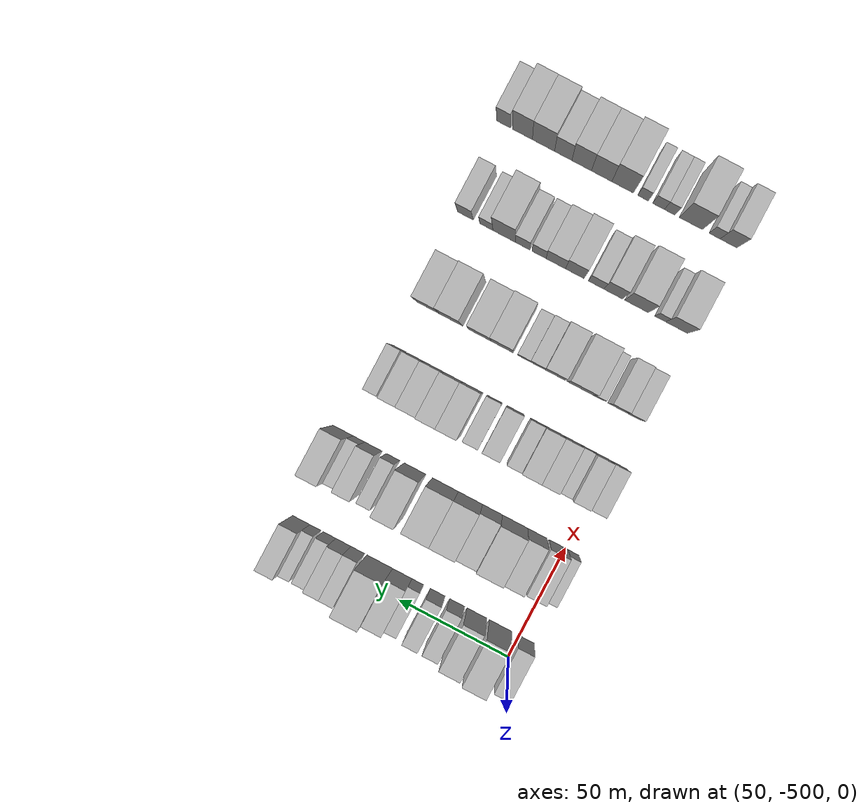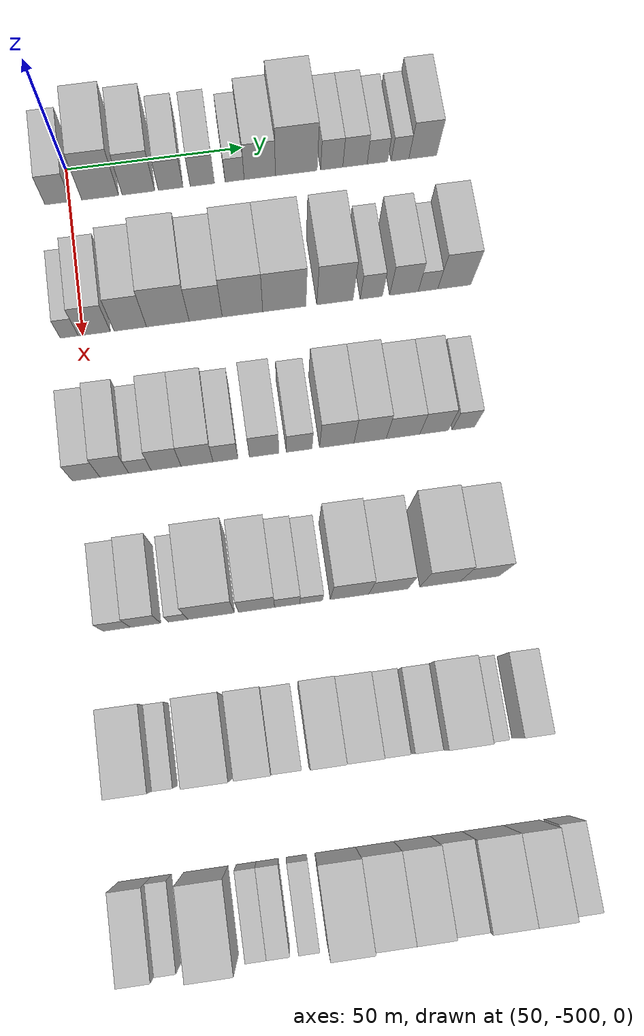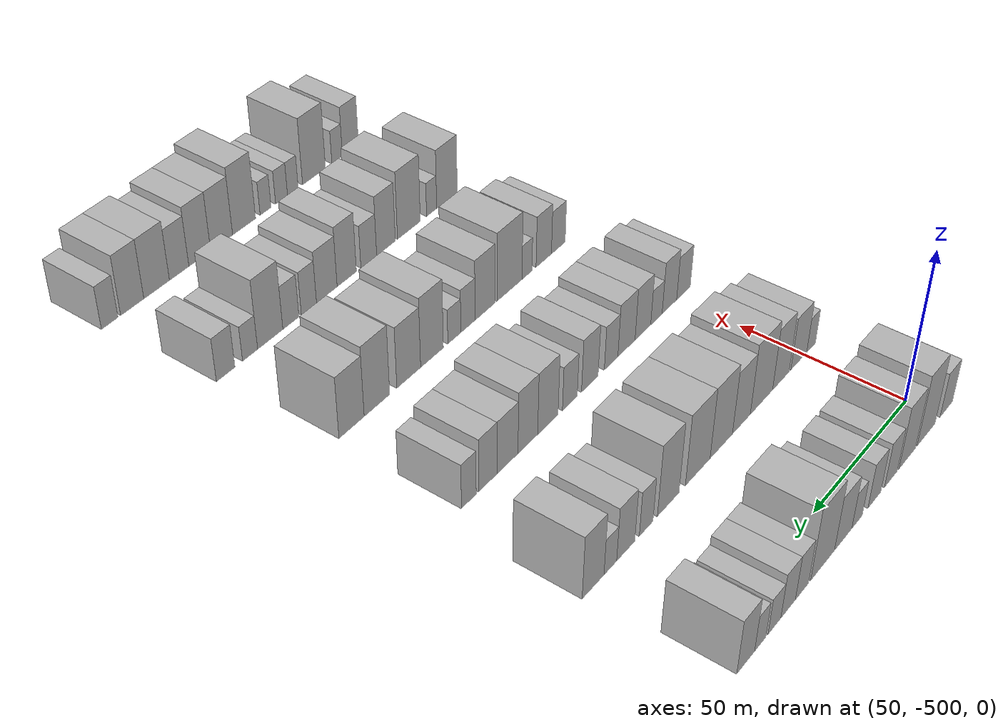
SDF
<sdf version="1.6">
 <world name="default">
  <model name="building_14">
   <static>1</static>
   <pose>50.0000 -503.1471 0 0.000000 0.000000 0.000000</pose>
   <link name="link">
    <pose>0 0 7.50 0 0 0</pose>
    <collision name="collision"><geometry><box><size>20.0000 7.3003 15.0000</size></box></geometry></collision>
    <visual name="visual">
     <cast_shadows>0</cast_shadows>
     <geometry><box><size>20.0000 7.3003 15.0000</size></box></geometry>
     <material>
      <script>
       <uri>model://HANNAS_wall/materials/scripts</uri>
       <uri>model://HANNAS_wall/materials/textures</uri>
       <name>vrc/HANNAS_wall</name>
      </script>
     </material>
    </visual>
   </link>
  </model>
  <model name="building_15">
   <static>1</static>
   <pose>50.0000 -491.3386 0 0.000000 0.000000 0.000000</pose>
   <link name="link">
    <pose>0 0 12.00 0 0 0</pose>
    <collision name="collision"><geometry><box><size>20.0000 10.3166 24.0000</size></box></geometry></collision>
    <visual name="visual">
     <cast_shadows>0</cast_shadows>
     <geometry><box><size>20.0000 10.3166 24.0000</size></box></geometry>
     <material>
      <script>
       <uri>model://HANNAS_wall/materials/scripts</uri>
       <uri>model://HANNAS_wall/materials/textures</uri>
       <name>vrc/HANNAS_wall</name>
      </script>
     </material>
    </visual>
   </link>
  </model>
  <model name="building_16">
   <static>1</static>
   <pose>50.0000 -480.6012 0 0.000000 0.000000 0.000000</pose>
   <link name="link">
    <pose>0 0 10.50 0 0 0</pose>
    <collision name="collision"><geometry><box><size>20.0000 9.1582 21.0000</size></box></geometry></collision>
    <visual name="visual">
     <cast_shadows>0</cast_shadows>
     <geometry><box><size>20.0000 9.1582 21.0000</size></box></geometry>
     <material>
      <script>
       <uri>model://HANNAS_wall/materials/scripts</uri>
       <uri>model://HANNAS_wall/materials/textures</uri>
       <name>vrc/HANNAS_wall</name>
      </script>
     </material>
    </visual>
   </link>
  </model>
  <model name="building_17">
   <static>1</static>
   <pose>50.0000 -471.5385 0 0.000000 0.000000 0.000000</pose>
   <link name="link">
    <pose>0 0 7.50 0 0 0</pose>
    <collision name="collision"><geometry><box><size>20.0000 6.9674 15.0000</size></box></geometry></collision>
    <visual name="visual">
     <cast_shadows>0</cast_shadows>
     <geometry><box><size>20.0000 6.9674 15.0000</size></box></geometry>
     <material>
      <script>
       <uri>model://HANNAS_wall/materials/scripts</uri>
       <uri>model://HANNAS_wall/materials/textures</uri>
       <name>vrc/HANNAS_wall</name>
      </script>
     </material>
    </visual>
   </link>
  </model>
  <model name="building_18">
   <static>1</static>
   <pose>50.0000 -462.6272 0 0.000000 0.000000 0.000000</pose>
   <link name="link">
    <pose>0 0 7.50 0 0 0</pose>
    <collision name="collision"><geometry><box><size>20.0000 6.8551 15.0000</size></box></geometry></collision>
    <visual name="visual">
     <cast_shadows>0</cast_shadows>
     <geometry><box><size>20.0000 6.8551 15.0000</size></box></geometry>
     <material>
      <script>
       <uri>model://HANNAS_wall/materials/scripts</uri>
       <uri>model://HANNAS_wall/materials/textures</uri>
       <name>vrc/HANNAS_wall</name>
      </script>
     </material>
    </visual>
   </link>
  </model>
  <model name="building_19">
   <static>1</static>
   <pose>50.0000 -453.5143 0 0.000000 0.000000 0.000000</pose>
   <link name="link">
    <pose>0 0 6.00 0 0 0</pose>
    <collision name="collision"><geometry><box><size>20.0000 5.3707 12.0000</size></box></geometry></collision>
    <visual name="visual">
     <cast_shadows>0</cast_shadows>
     <geometry><box><size>20.0000 5.3707 12.0000</size></box></geometry>
     <material>
      <script>
       <uri>model://HANNAS_wall/materials/scripts</uri>
       <uri>model://HANNAS_wall/materials/textures</uri>
       <name>vrc/HANNAS_wall</name>
      </script>
     </material>
    </visual>
   </link>
  </model>
  <model name="building_20">
   <static>1</static>
   <pose>50.0000 -446.4082 0 0.000000 0.000000 0.000000</pose>
   <link name="link">
    <pose>0 0 9.00 0 0 0</pose>
    <collision name="collision"><geometry><box><size>20.0000 8.8415 18.0000</size></box></geometry></collision>
    <visual name="visual">
     <cast_shadows>0</cast_shadows>
     <geometry><box><size>20.0000 8.8415 18.0000</size></box></geometry>
     <material>
      <script>
       <uri>model://HANNAS_wall/materials/scripts</uri>
       <uri>model://HANNAS_wall/materials/textures</uri>
       <name>vrc/HANNAS_wall</name>
      </script>
     </material>
    </visual>
   </link>
  </model>
  <model name="building_21">
   <static>1</static>
   <pose>50.0000 -436.0804 0 0.000000 0.000000 0.000000</pose>
   <link name="link">
    <pose>0 0 12.00 0 0 0</pose>
    <collision name="collision"><geometry><box><size>20.0000 11.8140 24.0000</size></box></geometry></collision>
    <visual name="visual">
     <cast_shadows>0</cast_shadows>
     <geometry><box><size>20.0000 11.8140 24.0000</size></box></geometry>
     <material>
      <script>
       <uri>model://HANNAS_wall/materials/scripts</uri>
       <uri>model://HANNAS_wall/materials/textures</uri>
       <name>vrc/HANNAS_wall</name>
      </script>
     </material>
    </visual>
   </link>
  </model>
  <model name="building_22">
   <static>1</static>
   <pose>50.0000 -426.0218 0 0.000000 0.000000 0.000000</pose>
   <link name="link">
    <pose>0 0 7.50 0 0 0</pose>
    <collision name="collision"><geometry><box><size>20.0000 6.3033 15.0000</size></box></geometry></collision>
    <visual name="visual">
     <cast_shadows>0</cast_shadows>
     <geometry><box><size>20.0000 6.3033 15.0000</size></box></geometry>
     <material>
      <script>
       <uri>model://HANNAS_wall/materials/scripts</uri>
       <uri>model://HANNAS_wall/materials/textures</uri>
       <name>vrc/HANNAS_wall</name>
      </script>
     </material>
    </visual>
   </link>
  </model>
  <model name="building_23">
   <static>1</static>
   <pose>50.0000 -419.4182 0 0.000000 0.000000 0.000000</pose>
   <link name="link">
    <pose>0 0 7.50 0 0 0</pose>
    <collision name="collision"><geometry><box><size>20.0000 6.9038 15.0000</size></box></geometry></collision>
    <visual name="visual">
     <cast_shadows>0</cast_shadows>
     <geometry><box><size>20.0000 6.9038 15.0000</size></box></geometry>
     <material>
      <script>
       <uri>model://HANNAS_wall/materials/scripts</uri>
       <uri>model://HANNAS_wall/materials/textures</uri>
       <name>vrc/HANNAS_wall</name>
      </script>
     </material>
    </visual>
   </link>
  </model>
  <model name="building_24">
   <static>1</static>
   <pose>50.0000 -413.0343 0 0.000000 0.000000 0.000000</pose>
   <link name="link">
    <pose>0 0 6.00 0 0 0</pose>
    <collision name="collision"><geometry><box><size>20.0000 5.8640 12.0000</size></box></geometry></collision>
    <visual name="visual">
     <cast_shadows>0</cast_shadows>
     <geometry><box><size>20.0000 5.8640 12.0000</size></box></geometry>
     <material>
      <script>
       <uri>model://HANNAS_wall/materials/scripts</uri>
       <uri>model://HANNAS_wall/materials/textures</uri>
       <name>vrc/HANNAS_wall</name>
      </script>
     </material>
    </visual>
   </link>
  </model>
  <model name="building_25">
   <static>1</static>
   <pose>50.0000 -406.5756 0 0.000000 0.000000 0.000000</pose>
   <link name="link">
    <pose>0 0 6.00 0 0 0</pose>
    <collision name="collision"><geometry><box><size>20.0000 5.0534 12.0000</size></box></geometry></collision>
    <visual name="visual">
     <cast_shadows>0</cast_shadows>
     <geometry><box><size>20.0000 5.0534 12.0000</size></box></geometry>
     <material>
      <script>
       <uri>model://HANNAS_wall/materials/scripts</uri>
       <uri>model://HANNAS_wall/materials/textures</uri>
       <name>vrc/HANNAS_wall</name>
      </script>
     </material>
    </visual>
   </link>
  </model>
  <model name="building_26">
   <static>1</static>
   <pose>50.0000 -400.0923 0 0.000000 0.000000 0.000000</pose>
   <link name="link">
    <pose>0 0 9.00 0 0 0</pose>
    <collision name="collision"><geometry><box><size>20.0000 7.9132 18.0000</size></box></geometry></collision>
    <visual name="visual">
     <cast_shadows>0</cast_shadows>
     <geometry><box><size>20.0000 7.9132 18.0000</size></box></geometry>
     <material>
      <script>
       <uri>model://HANNAS_wall/materials/scripts</uri>
       <uri>model://HANNAS_wall/materials/textures</uri>
       <name>vrc/HANNAS_wall</name>
      </script>
     </material>
    </visual>
   </link>
  </model>
  <model name="building_158">
   <static>1</static>
   <pose>90.0000 -503.6116 0 0.000000 0.000000 0.000000</pose>
   <link name="link">
    <pose>0 0 6.00 0 0 0</pose>
    <collision name="collision"><geometry><box><size>20.0000 4.8716 12.0000</size></box></geometry></collision>
    <visual name="visual">
     <cast_shadows>0</cast_shadows>
     <geometry><box><size>20.0000 4.8716 12.0000</size></box></geometry>
     <material>
      <script>
       <uri>model://HANNAS_wall/materials/scripts</uri>
       <uri>model://HANNAS_wall/materials/textures</uri>
       <name>vrc/HANNAS_wall</name>
      </script>
     </material>
    </visual>
   </link>
  </model>
  <model name="building_159">
   <static>1</static>
   <pose>90.0000 -496.8145 0 0.000000 0.000000 0.000000</pose>
   <link name="link">
    <pose>0 0 9.00 0 0 0</pose>
    <collision name="collision"><geometry><box><size>20.0000 8.7226 18.0000</size></box></geometry></collision>
    <visual name="visual">
     <cast_shadows>0</cast_shadows>
     <geometry><box><size>20.0000 8.7226 18.0000</size></box></geometry>
     <material>
      <script>
       <uri>model://HANNAS_wall/materials/scripts</uri>
       <uri>model://HANNAS_wall/materials/textures</uri>
       <name>vrc/HANNAS_wall</name>
      </script>
     </material>
    </visual>
   </link>
  </model>
  <model name="building_160">
   <static>1</static>
   <pose>90.0000 -487.0464 0 0.000000 0.000000 0.000000</pose>
   <link name="link">
    <pose>0 0 10.50 0 0 0</pose>
    <collision name="collision"><geometry><box><size>20.0000 8.8134 21.0000</size></box></geometry></collision>
    <visual name="visual">
     <cast_shadows>0</cast_shadows>
     <geometry><box><size>20.0000 8.8134 21.0000</size></box></geometry>
     <material>
      <script>
       <uri>model://HANNAS_wall/materials/scripts</uri>
       <uri>model://HANNAS_wall/materials/textures</uri>
       <name>vrc/HANNAS_wall</name>
      </script>
     </material>
    </visual>
   </link>
  </model>
  <model name="building_161">
   <static>1</static>
   <pose>90.0000 -476.8299 0 0.000000 0.000000 0.000000</pose>
   <link name="link">
    <pose>0 0 12.00 0 0 0</pose>
    <collision name="collision"><geometry><box><size>20.0000 11.6195 24.0000</size></box></geometry></collision>
    <visual name="visual">
     <cast_shadows>0</cast_shadows>
     <geometry><box><size>20.0000 11.6195 24.0000</size></box></geometry>
     <material>
      <script>
       <uri>model://HANNAS_wall/materials/scripts</uri>
       <uri>model://HANNAS_wall/materials/textures</uri>
       <name>vrc/HANNAS_wall</name>
      </script>
     </material>
    </visual>
   </link>
  </model>
  <model name="building_162">
   <static>1</static>
   <pose>90.0000 -466.4968 0 0.000000 0.000000 0.000000</pose>
   <link name="link">
    <pose>0 0 10.50 0 0 0</pose>
    <collision name="collision"><geometry><box><size>20.0000 9.0468 21.0000</size></box></geometry></collision>
    <visual name="visual">
     <cast_shadows>0</cast_shadows>
     <geometry><box><size>20.0000 9.0468 21.0000</size></box></geometry>
     <material>
      <script>
       <uri>model://HANNAS_wall/materials/scripts</uri>
       <uri>model://HANNAS_wall/materials/textures</uri>
       <name>vrc/HANNAS_wall</name>
      </script>
     </material>
    </visual>
   </link>
  </model>
  <model name="building_163">
   <static>1</static>
   <pose>90.0000 -456.4369 0 0.000000 0.000000 0.000000</pose>
   <link name="link">
    <pose>0 0 12.00 0 0 0</pose>
    <collision name="collision"><geometry><box><size>20.0000 11.0728 24.0000</size></box></geometry></collision>
    <visual name="visual">
     <cast_shadows>0</cast_shadows>
     <geometry><box><size>20.0000 11.0728 24.0000</size></box></geometry>
     <material>
      <script>
       <uri>model://HANNAS_wall/materials/scripts</uri>
       <uri>model://HANNAS_wall/materials/textures</uri>
       <name>vrc/HANNAS_wall</name>
      </script>
     </material>
    </visual>
   </link>
  </model>
  <model name="building_164">
   <static>1</static>
   <pose>90.0000 -444.9865 0 0.000000 0.000000 0.000000</pose>
   <link name="link">
    <pose>0 0 12.00 0 0 0</pose>
    <collision name="collision"><geometry><box><size>20.0000 11.8280 24.0000</size></box></geometry></collision>
    <visual name="visual">
     <cast_shadows>0</cast_shadows>
     <geometry><box><size>20.0000 11.8280 24.0000</size></box></geometry>
     <material>
      <script>
       <uri>model://HANNAS_wall/materials/scripts</uri>
       <uri>model://HANNAS_wall/materials/textures</uri>
       <name>vrc/HANNAS_wall</name>
      </script>
     </material>
    </visual>
   </link>
  </model>
  <model name="building_165">
   <static>1</static>
   <pose>90.0000 -431.0981 0 0.000000 0.000000 0.000000</pose>
   <link name="link">
    <pose>0 0 12.00 0 0 0</pose>
    <collision name="collision"><geometry><box><size>20.0000 9.9488 24.0000</size></box></geometry></collision>
    <visual name="visual">
     <cast_shadows>0</cast_shadows>
     <geometry><box><size>20.0000 9.9488 24.0000</size></box></geometry>
     <material>
      <script>
       <uri>model://HANNAS_wall/materials/scripts</uri>
       <uri>model://HANNAS_wall/materials/textures</uri>
       <name>vrc/HANNAS_wall</name>
      </script>
     </material>
    </visual>
   </link>
  </model>
  <model name="building_166">
   <static>1</static>
   <pose>90.0000 -421.0599 0 0.000000 0.000000 0.000000</pose>
   <link name="link">
    <pose>0 0 7.50 0 0 0</pose>
    <collision name="collision"><geometry><box><size>20.0000 6.1277 15.0000</size></box></geometry></collision>
    <visual name="visual">
     <cast_shadows>0</cast_shadows>
     <geometry><box><size>20.0000 6.1277 15.0000</size></box></geometry>
     <material>
      <script>
       <uri>model://HANNAS_wall/materials/scripts</uri>
       <uri>model://HANNAS_wall/materials/textures</uri>
       <name>vrc/HANNAS_wall</name>
      </script>
     </material>
    </visual>
   </link>
  </model>
  <model name="building_167">
   <static>1</static>
   <pose>90.0000 -412.0509 0 0.000000 0.000000 0.000000</pose>
   <link name="link">
    <pose>0 0 9.00 0 0 0</pose>
    <collision name="collision"><geometry><box><size>20.0000 7.8903 18.0000</size></box></geometry></collision>
    <visual name="visual">
     <cast_shadows>0</cast_shadows>
     <geometry><box><size>20.0000 7.8903 18.0000</size></box></geometry>
     <material>
      <script>
       <uri>model://HANNAS_wall/materials/scripts</uri>
       <uri>model://HANNAS_wall/materials/textures</uri>
       <name>vrc/HANNAS_wall</name>
      </script>
     </material>
    </visual>
   </link>
  </model>
  <model name="building_168">
   <static>1</static>
   <pose>90.0000 -405.3960 0 0.000000 0.000000 0.000000</pose>
   <link name="link">
    <pose>0 0 6.00 0 0 0</pose>
    <collision name="collision"><geometry><box><size>20.0000 5.4194 12.0000</size></box></geometry></collision>
    <visual name="visual">
     <cast_shadows>0</cast_shadows>
     <geometry><box><size>20.0000 5.4194 12.0000</size></box></geometry>
     <material>
      <script>
       <uri>model://HANNAS_wall/materials/scripts</uri>
       <uri>model://HANNAS_wall/materials/textures</uri>
       <name>vrc/HANNAS_wall</name>
      </script>
     </material>
    </visual>
   </link>
  </model>
  <model name="building_169">
   <static>1</static>
   <pose>90.0000 -398.1069 0 0.000000 0.000000 0.000000</pose>
   <link name="link">
    <pose>0 0 10.50 0 0 0</pose>
    <collision name="collision"><geometry><box><size>20.0000 9.1589 21.0000</size></box></geometry></collision>
    <visual name="visual">
     <cast_shadows>0</cast_shadows>
     <geometry><box><size>20.0000 9.1589 21.0000</size></box></geometry>
     <material>
      <script>
       <uri>model://HANNAS_wall/materials/scripts</uri>
       <uri>model://HANNAS_wall/materials/textures</uri>
       <name>vrc/HANNAS_wall</name>
      </script>
     </material>
    </visual>
   </link>
  </model>
  <model name="building_290">
   <static>1</static>
   <pose>130.0000 -502.7717 0 0.000000 0.000000 0.000000</pose>
   <link name="link">
    <pose>0 0 7.50 0 0 0</pose>
    <collision name="collision"><geometry><box><size>20.0000 7.2037 15.0000</size></box></geometry></collision>
    <visual name="visual">
     <cast_shadows>0</cast_shadows>
     <geometry><box><size>20.0000 7.2037 15.0000</size></box></geometry>
     <material>
      <script>
       <uri>model://HANNAS_wall/materials/scripts</uri>
       <uri>model://HANNAS_wall/materials/textures</uri>
       <name>vrc/HANNAS_wall</name>
      </script>
     </material>
    </visual>
   </link>
  </model>
  <model name="building_291">
   <static>1</static>
   <pose>130.0000 -495.3733 0 0.000000 0.000000 0.000000</pose>
   <link name="link">
    <pose>0 0 9.00 0 0 0</pose>
    <collision name="collision"><geometry><box><size>20.0000 7.5930 18.0000</size></box></geometry></collision>
    <visual name="visual">
     <cast_shadows>0</cast_shadows>
     <geometry><box><size>20.0000 7.5930 18.0000</size></box></geometry>
     <material>
      <script>
       <uri>model://HANNAS_wall/materials/scripts</uri>
       <uri>model://HANNAS_wall/materials/textures</uri>
       <name>vrc/HANNAS_wall</name>
      </script>
     </material>
    </visual>
   </link>
  </model>
  <model name="building_292">
   <static>1</static>
   <pose>130.0000 -488.6489 0 0.000000 0.000000 0.000000</pose>
   <link name="link">
    <pose>0 0 6.00 0 0 0</pose>
    <collision name="collision"><geometry><box><size>20.0000 5.8557 12.0000</size></box></geometry></collision>
    <visual name="visual">
     <cast_shadows>0</cast_shadows>
     <geometry><box><size>20.0000 5.8557 12.0000</size></box></geometry>
     <material>
      <script>
       <uri>model://HANNAS_wall/materials/scripts</uri>
       <uri>model://HANNAS_wall/materials/textures</uri>
       <name>vrc/HANNAS_wall</name>
      </script>
     </material>
    </visual>
   </link>
  </model>
  <model name="building_293">
   <static>1</static>
   <pose>130.0000 -481.7723 0 0.000000 0.000000 0.000000</pose>
   <link name="link">
    <pose>0 0 9.00 0 0 0</pose>
    <collision name="collision"><geometry><box><size>20.0000 7.8976 18.0000</size></box></geometry></collision>
    <visual name="visual">
     <cast_shadows>0</cast_shadows>
     <geometry><box><size>20.0000 7.8976 18.0000</size></box></geometry>
     <material>
      <script>
       <uri>model://HANNAS_wall/materials/scripts</uri>
       <uri>model://HANNAS_wall/materials/textures</uri>
       <name>vrc/HANNAS_wall</name>
      </script>
     </material>
    </visual>
   </link>
  </model>
  <model name="building_294">
   <static>1</static>
   <pose>130.0000 -473.5834 0 0.000000 0.000000 0.000000</pose>
   <link name="link">
    <pose>0 0 9.00 0 0 0</pose>
    <collision name="collision"><geometry><box><size>20.0000 8.4801 18.0000</size></box></geometry></collision>
    <visual name="visual">
     <cast_shadows>0</cast_shadows>
     <geometry><box><size>20.0000 8.4801 18.0000</size></box></geometry>
     <material>
      <script>
       <uri>model://HANNAS_wall/materials/scripts</uri>
       <uri>model://HANNAS_wall/materials/textures</uri>
       <name>vrc/HANNAS_wall</name>
      </script>
     </material>
    </visual>
   </link>
  </model>
  <model name="building_295">
   <static>1</static>
   <pose>130.0000 -466.0587 0 0.000000 0.000000 0.000000</pose>
   <link name="link">
    <pose>0 0 7.50 0 0 0</pose>
    <collision name="collision"><geometry><box><size>20.0000 6.5694 15.0000</size></box></geometry></collision>
    <visual name="visual">
     <cast_shadows>0</cast_shadows>
     <geometry><box><size>20.0000 6.5694 15.0000</size></box></geometry>
     <material>
      <script>
       <uri>model://HANNAS_wall/materials/scripts</uri>
       <uri>model://HANNAS_wall/materials/textures</uri>
       <name>vrc/HANNAS_wall</name>
      </script>
     </material>
    </visual>
   </link>
  </model>
  <model name="building_296">
   <static>1</static>
   <pose>130.0000 -455.8693 0 0.000000 0.000000 0.000000</pose>
   <link name="link">
    <pose>0 0 9.00 0 0 0</pose>
    <collision name="collision"><geometry><box><size>20.0000 7.8094 18.0000</size></box></geometry></collision>
    <visual name="visual">
     <cast_shadows>0</cast_shadows>
     <geometry><box><size>20.0000 7.8094 18.0000</size></box></geometry>
     <material>
      <script>
       <uri>model://HANNAS_wall/materials/scripts</uri>
       <uri>model://HANNAS_wall/materials/textures</uri>
       <name>vrc/HANNAS_wall</name>
      </script>
     </material>
    </visual>
   </link>
  </model>
  <model name="building_297">
   <static>1</static>
   <pose>130.0000 -446.5540 0 0.000000 0.000000 0.000000</pose>
   <link name="link">
    <pose>0 0 7.50 0 0 0</pose>
    <collision name="collision"><geometry><box><size>20.0000 6.8214 15.0000</size></box></geometry></collision>
    <visual name="visual">
     <cast_shadows>0</cast_shadows>
     <geometry><box><size>20.0000 6.8214 15.0000</size></box></geometry>
     <material>
      <script>
       <uri>model://HANNAS_wall/materials/scripts</uri>
       <uri>model://HANNAS_wall/materials/textures</uri>
       <name>vrc/HANNAS_wall</name>
      </script>
     </material>
    </visual>
   </link>
  </model>
  <model name="building_298">
   <static>1</static>
   <pose>130.0000 -436.5729 0 0.000000 0.000000 0.000000</pose>
   <link name="link">
    <pose>0 0 10.50 0 0 0</pose>
    <collision name="collision"><geometry><box><size>20.0000 9.1409 21.0000</size></box></geometry></collision>
    <visual name="visual">
     <cast_shadows>0</cast_shadows>
     <geometry><box><size>20.0000 9.1409 21.0000</size></box></geometry>
     <material>
      <script>
       <uri>model://HANNAS_wall/materials/scripts</uri>
       <uri>model://HANNAS_wall/materials/textures</uri>
       <name>vrc/HANNAS_wall</name>
      </script>
     </material>
    </visual>
   </link>
  </model>
  <model name="building_299">
   <static>1</static>
   <pose>130.0000 -427.6856 0 0.000000 0.000000 0.000000</pose>
   <link name="link">
    <pose>0 0 10.50 0 0 0</pose>
    <collision name="collision"><geometry><box><size>20.0000 8.6337 21.0000</size></box></geometry></collision>
    <visual name="visual">
     <cast_shadows>0</cast_shadows>
     <geometry><box><size>20.0000 8.6337 21.0000</size></box></geometry>
     <material>
      <script>
       <uri>model://HANNAS_wall/materials/scripts</uri>
       <uri>model://HANNAS_wall/materials/textures</uri>
       <name>vrc/HANNAS_wall</name>
      </script>
     </material>
    </visual>
   </link>
  </model>
  <model name="building_300">
   <static>1</static>
   <pose>130.0000 -418.8875 0 0.000000 0.000000 0.000000</pose>
   <link name="link">
    <pose>0 0 9.00 0 0 0</pose>
    <collision name="collision"><geometry><box><size>20.0000 8.9623 18.0000</size></box></geometry></collision>
    <visual name="visual">
     <cast_shadows>0</cast_shadows>
     <geometry><box><size>20.0000 8.9623 18.0000</size></box></geometry>
     <material>
      <script>
       <uri>model://HANNAS_wall/materials/scripts</uri>
       <uri>model://HANNAS_wall/materials/textures</uri>
       <name>vrc/HANNAS_wall</name>
      </script>
     </material>
    </visual>
   </link>
  </model>
  <model name="building_301">
   <static>1</static>
   <pose>130.0000 -410.5763 0 0.000000 0.000000 0.000000</pose>
   <link name="link">
    <pose>0 0 9.00 0 0 0</pose>
    <collision name="collision"><geometry><box><size>20.0000 7.6601 18.0000</size></box></geometry></collision>
    <visual name="visual">
     <cast_shadows>0</cast_shadows>
     <geometry><box><size>20.0000 7.6601 18.0000</size></box></geometry>
     <material>
      <script>
       <uri>model://HANNAS_wall/materials/scripts</uri>
       <uri>model://HANNAS_wall/materials/textures</uri>
       <name>vrc/HANNAS_wall</name>
      </script>
     </material>
    </visual>
   </link>
  </model>
  <model name="building_302">
   <static>1</static>
   <pose>130.0000 -402.7287 0 0.000000 0.000000 0.000000</pose>
   <link name="link">
    <pose>0 0 7.50 0 0 0</pose>
    <collision name="collision"><geometry><box><size>20.0000 6.0352 15.0000</size></box></geometry></collision>
    <visual name="visual">
     <cast_shadows>0</cast_shadows>
     <geometry><box><size>20.0000 6.0352 15.0000</size></box></geometry>
     <material>
      <script>
       <uri>model://HANNAS_wall/materials/scripts</uri>
       <uri>model://HANNAS_wall/materials/textures</uri>
       <name>vrc/HANNAS_wall</name>
      </script>
     </material>
    </visual>
   </link>
  </model>
  <model name="building_422">
   <static>1</static>
   <pose>170.0000 -498.7191 0 0.000000 0.000000 0.000000</pose>
   <link name="link">
    <pose>0 0 7.50 0 0 0</pose>
    <collision name="collision"><geometry><box><size>20.0000 6.9481 15.0000</size></box></geometry></collision>
    <visual name="visual">
     <cast_shadows>0</cast_shadows>
     <geometry><box><size>20.0000 6.9481 15.0000</size></box></geometry>
     <material>
      <script>
       <uri>model://HANNAS_wall/materials/scripts</uri>
       <uri>model://HANNAS_wall/materials/textures</uri>
       <name>vrc/HANNAS_wall</name>
      </script>
     </material>
    </visual>
   </link>
  </model>
  <model name="building_423">
   <static>1</static>
   <pose>170.0000 -491.4127 0 0.000000 0.000000 0.000000</pose>
   <link name="link">
    <pose>0 0 9.00 0 0 0</pose>
    <collision name="collision"><geometry><box><size>20.0000 7.6646 18.0000</size></box></geometry></collision>
    <visual name="visual">
     <cast_shadows>0</cast_shadows>
     <geometry><box><size>20.0000 7.6646 18.0000</size></box></geometry>
     <material>
      <script>
       <uri>model://HANNAS_wall/materials/scripts</uri>
       <uri>model://HANNAS_wall/materials/textures</uri>
       <name>vrc/HANNAS_wall</name>
      </script>
     </material>
    </visual>
   </link>
  </model>
  <model name="building_424">
   <static>1</static>
   <pose>170.0000 -483.1360 0 0.000000 0.000000 0.000000</pose>
   <link name="link">
    <pose>0 0 6.00 0 0 0</pose>
    <collision name="collision"><geometry><box><size>20.0000 4.8889 12.0000</size></box></geometry></collision>
    <visual name="visual">
     <cast_shadows>0</cast_shadows>
     <geometry><box><size>20.0000 4.8889 12.0000</size></box></geometry>
     <material>
      <script>
       <uri>model://HANNAS_wall/materials/scripts</uri>
       <uri>model://HANNAS_wall/materials/textures</uri>
       <name>vrc/HANNAS_wall</name>
      </script>
     </material>
    </visual>
   </link>
  </model>
  <model name="building_425">
   <static>1</static>
   <pose>170.0000 -474.7126 0 0.000000 0.000000 0.000000</pose>
   <link name="link">
    <pose>0 0 12.00 0 0 0</pose>
    <collision name="collision"><geometry><box><size>20.0000 11.9580 24.0000</size></box></geometry></collision>
    <visual name="visual">
     <cast_shadows>0</cast_shadows>
     <geometry><box><size>20.0000 11.9580 24.0000</size></box></geometry>
     <material>
      <script>
       <uri>model://HANNAS_wall/materials/scripts</uri>
       <uri>model://HANNAS_wall/materials/textures</uri>
       <name>vrc/HANNAS_wall</name>
      </script>
     </material>
    </visual>
   </link>
  </model>
  <model name="building_426">
   <static>1</static>
   <pose>170.0000 -463.1261 0 0.000000 0.000000 0.000000</pose>
   <link name="link">
    <pose>0 0 10.50 0 0 0</pose>
    <collision name="collision"><geometry><box><size>20.0000 9.2150 21.0000</size></box></geometry></collision>
    <visual name="visual">
     <cast_shadows>0</cast_shadows>
     <geometry><box><size>20.0000 9.2150 21.0000</size></box></geometry>
     <material>
      <script>
       <uri>model://HANNAS_wall/materials/scripts</uri>
       <uri>model://HANNAS_wall/materials/textures</uri>
       <name>vrc/HANNAS_wall</name>
      </script>
     </material>
    </visual>
   </link>
  </model>
  <model name="building_427">
   <static>1</static>
   <pose>170.0000 -455.2903 0 0.000000 0.000000 0.000000</pose>
   <link name="link">
    <pose>0 0 7.50 0 0 0</pose>
    <collision name="collision"><geometry><box><size>20.0000 6.4566 15.0000</size></box></geometry></collision>
    <visual name="visual">
     <cast_shadows>0</cast_shadows>
     <geometry><box><size>20.0000 6.4566 15.0000</size></box></geometry>
     <material>
      <script>
       <uri>model://HANNAS_wall/materials/scripts</uri>
       <uri>model://HANNAS_wall/materials/textures</uri>
       <name>vrc/HANNAS_wall</name>
      </script>
     </material>
    </visual>
   </link>
  </model>
  <model name="building_428">
   <static>1</static>
   <pose>170.0000 -449.1512 0 0.000000 0.000000 0.000000</pose>
   <link name="link">
    <pose>0 0 6.00 0 0 0</pose>
    <collision name="collision"><geometry><box><size>20.0000 5.8215 12.0000</size></box></geometry></collision>
    <visual name="visual">
     <cast_shadows>0</cast_shadows>
     <geometry><box><size>20.0000 5.8215 12.0000</size></box></geometry>
     <material>
      <script>
       <uri>model://HANNAS_wall/materials/scripts</uri>
       <uri>model://HANNAS_wall/materials/textures</uri>
       <name>vrc/HANNAS_wall</name>
      </script>
     </material>
    </visual>
   </link>
  </model>
  <model name="building_429">
   <static>1</static>
   <pose>170.0000 -439.2803 0 0.000000 0.000000 0.000000</pose>
   <link name="link">
    <pose>0 0 12.00 0 0 0</pose>
    <collision name="collision"><geometry><box><size>20.0000 9.9203 24.0000</size></box></geometry></collision>
    <visual name="visual">
     <cast_shadows>0</cast_shadows>
     <geometry><box><size>20.0000 9.9203 24.0000</size></box></geometry>
     <material>
      <script>
       <uri>model://HANNAS_wall/materials/scripts</uri>
       <uri>model://HANNAS_wall/materials/textures</uri>
       <name>vrc/HANNAS_wall</name>
      </script>
     </material>
    </visual>
   </link>
  </model>
  <model name="building_430">
   <static>1</static>
   <pose>170.0000 -429.2405 0 0.000000 0.000000 0.000000</pose>
   <link name="link">
    <pose>0 0 10.50 0 0 0</pose>
    <collision name="collision"><geometry><box><size>20.0000 10.1593 21.0000</size></box></geometry></collision>
    <visual name="visual">
     <cast_shadows>0</cast_shadows>
     <geometry><box><size>20.0000 10.1593 21.0000</size></box></geometry>
     <material>
      <script>
       <uri>model://HANNAS_wall/materials/scripts</uri>
       <uri>model://HANNAS_wall/materials/textures</uri>
       <name>vrc/HANNAS_wall</name>
      </script>
     </material>
    </visual>
   </link>
  </model>
  <model name="building_431">
   <static>1</static>
   <pose>170.0000 -415.9179 0 0.000000 0.000000 0.000000</pose>
   <link name="link">
    <pose>0 0 12.00 0 0 0</pose>
    <collision name="collision"><geometry><box><size>20.0000 10.4859 24.0000</size></box></geometry></collision>
    <visual name="visual">
     <cast_shadows>0</cast_shadows>
     <geometry><box><size>20.0000 10.4859 24.0000</size></box></geometry>
     <material>
      <script>
       <uri>model://HANNAS_wall/materials/scripts</uri>
       <uri>model://HANNAS_wall/materials/textures</uri>
       <name>vrc/HANNAS_wall</name>
      </script>
     </material>
    </visual>
   </link>
  </model>
  <model name="building_432">
   <static>1</static>
   <pose>170.0000 -405.6177 0 0.000000 0.000000 0.000000</pose>
   <link name="link">
    <pose>0 0 10.50 0 0 0</pose>
    <collision name="collision"><geometry><box><size>20.0000 10.1146 21.0000</size></box></geometry></collision>
    <visual name="visual">
     <cast_shadows>0</cast_shadows>
     <geometry><box><size>20.0000 10.1146 21.0000</size></box></geometry>
     <material>
      <script>
       <uri>model://HANNAS_wall/materials/scripts</uri>
       <uri>model://HANNAS_wall/materials/textures</uri>
       <name>vrc/HANNAS_wall</name>
      </script>
     </material>
    </visual>
   </link>
  </model>
  <model name="building_567">
   <static>1</static>
   <pose>210.0000 -497.8065 0 0.000000 0.000000 0.000000</pose>
   <link name="link">
    <pose>0 0 10.50 0 0 0</pose>
    <collision name="collision"><geometry><box><size>20.0000 10.0680 21.0000</size></box></geometry></collision>
    <visual name="visual">
     <cast_shadows>0</cast_shadows>
     <geometry><box><size>20.0000 10.0680 21.0000</size></box></geometry>
     <material>
      <script>
       <uri>model://HANNAS_wall/materials/scripts</uri>
       <uri>model://HANNAS_wall/materials/textures</uri>
       <name>vrc/HANNAS_wall</name>
      </script>
     </material>
    </visual>
   </link>
  </model>
  <model name="building_568">
   <static>1</static>
   <pose>210.0000 -490.3319 0 0.000000 0.000000 0.000000</pose>
   <link name="link">
    <pose>0 0 6.00 0 0 0</pose>
    <collision name="collision"><geometry><box><size>20.0000 4.8813 12.0000</size></box></geometry></collision>
    <visual name="visual">
     <cast_shadows>0</cast_shadows>
     <geometry><box><size>20.0000 4.8813 12.0000</size></box></geometry>
     <material>
      <script>
       <uri>model://HANNAS_wall/materials/scripts</uri>
       <uri>model://HANNAS_wall/materials/textures</uri>
       <name>vrc/HANNAS_wall</name>
      </script>
     </material>
    </visual>
   </link>
  </model>
  <model name="building_569">
   <static>1</static>
   <pose>210.0000 -479.5185 0 0.000000 0.000000 0.000000</pose>
   <link name="link">
    <pose>0 0 12.00 0 0 0</pose>
    <collision name="collision"><geometry><box><size>20.0000 10.7455 24.0000</size></box></geometry></collision>
    <visual name="visual">
     <cast_shadows>0</cast_shadows>
     <geometry><box><size>20.0000 10.7455 24.0000</size></box></geometry>
     <material>
      <script>
       <uri>model://HANNAS_wall/materials/scripts</uri>
       <uri>model://HANNAS_wall/materials/textures</uri>
       <name>vrc/HANNAS_wall</name>
      </script>
     </material>
    </visual>
   </link>
  </model>
  <model name="building_570">
   <static>1</static>
   <pose>210.0000 -468.8659 0 0.000000 0.000000 0.000000</pose>
   <link name="link">
    <pose>0 0 10.50 0 0 0</pose>
    <collision name="collision"><geometry><box><size>20.0000 8.5597 21.0000</size></box></geometry></collision>
    <visual name="visual">
     <cast_shadows>0</cast_shadows>
     <geometry><box><size>20.0000 8.5597 21.0000</size></box></geometry>
     <material>
      <script>
       <uri>model://HANNAS_wall/materials/scripts</uri>
       <uri>model://HANNAS_wall/materials/textures</uri>
       <name>vrc/HANNAS_wall</name>
      </script>
     </material>
    </visual>
   </link>
  </model>
  <model name="building_571">
   <static>1</static>
   <pose>210.0000 -461.0327 0 0.000000 0.000000 0.000000</pose>
   <link name="link">
    <pose>0 0 7.50 0 0 0</pose>
    <collision name="collision"><geometry><box><size>20.0000 7.1067 15.0000</size></box></geometry></collision>
    <visual name="visual">
     <cast_shadows>0</cast_shadows>
     <geometry><box><size>20.0000 7.1067 15.0000</size></box></geometry>
     <material>
      <script>
       <uri>model://HANNAS_wall/materials/scripts</uri>
       <uri>model://HANNAS_wall/materials/textures</uri>
       <name>vrc/HANNAS_wall</name>
      </script>
     </material>
    </visual>
   </link>
  </model>
  <model name="building_572">
   <static>1</static>
   <pose>210.0000 -451.2501 0 0.000000 0.000000 0.000000</pose>
   <link name="link">
    <pose>0 0 10.50 0 0 0</pose>
    <collision name="collision"><geometry><box><size>20.0000 8.4585 21.0000</size></box></geometry></collision>
    <visual name="visual">
     <cast_shadows>0</cast_shadows>
     <geometry><box><size>20.0000 8.4585 21.0000</size></box></geometry>
     <material>
      <script>
       <uri>model://HANNAS_wall/materials/scripts</uri>
       <uri>model://HANNAS_wall/materials/textures</uri>
       <name>vrc/HANNAS_wall</name>
      </script>
     </material>
    </visual>
   </link>
  </model>
  <model name="building_573">
   <static>1</static>
   <pose>210.0000 -442.5721 0 0.000000 0.000000 0.000000</pose>
   <link name="link">
    <pose>0 0 9.00 0 0 0</pose>
    <collision name="collision"><geometry><box><size>20.0000 8.8974 18.0000</size></box></geometry></collision>
    <visual name="visual">
     <cast_shadows>0</cast_shadows>
     <geometry><box><size>20.0000 8.8974 18.0000</size></box></geometry>
     <material>
      <script>
       <uri>model://HANNAS_wall/materials/scripts</uri>
       <uri>model://HANNAS_wall/materials/textures</uri>
       <name>vrc/HANNAS_wall</name>
      </script>
     </material>
    </visual>
   </link>
  </model>
  <model name="building_574">
   <static>1</static>
   <pose>210.0000 -434.9144 0 0.000000 0.000000 0.000000</pose>
   <link name="link">
    <pose>0 0 7.50 0 0 0</pose>
    <collision name="collision"><geometry><box><size>20.0000 6.4180 15.0000</size></box></geometry></collision>
    <visual name="visual">
     <cast_shadows>0</cast_shadows>
     <geometry><box><size>20.0000 6.4180 15.0000</size></box></geometry>
     <material>
      <script>
       <uri>model://HANNAS_wall/materials/scripts</uri>
       <uri>model://HANNAS_wall/materials/textures</uri>
       <name>vrc/HANNAS_wall</name>
      </script>
     </material>
    </visual>
   </link>
  </model>
  <model name="building_575">
   <static>1</static>
   <pose>210.0000 -427.3824 0 0.000000 0.000000 0.000000</pose>
   <link name="link">
    <pose>0 0 7.50 0 0 0</pose>
    <collision name="collision"><geometry><box><size>20.0000 6.6460 15.0000</size></box></geometry></collision>
    <visual name="visual">
     <cast_shadows>0</cast_shadows>
     <geometry><box><size>20.0000 6.6460 15.0000</size></box></geometry>
     <material>
      <script>
       <uri>model://HANNAS_wall/materials/scripts</uri>
       <uri>model://HANNAS_wall/materials/textures</uri>
       <name>vrc/HANNAS_wall</name>
      </script>
     </material>
    </visual>
   </link>
  </model>
  <model name="building_576">
   <static>1</static>
   <pose>210.0000 -418.9365 0 0.000000 0.000000 0.000000</pose>
   <link name="link">
    <pose>0 0 12.00 0 0 0</pose>
    <collision name="collision"><geometry><box><size>20.0000 10.2457 24.0000</size></box></geometry></collision>
    <visual name="visual">
     <cast_shadows>0</cast_shadows>
     <geometry><box><size>20.0000 10.2457 24.0000</size></box></geometry>
     <material>
      <script>
       <uri>model://HANNAS_wall/materials/scripts</uri>
       <uri>model://HANNAS_wall/materials/textures</uri>
       <name>vrc/HANNAS_wall</name>
      </script>
     </material>
    </visual>
   </link>
  </model>
  <model name="building_577">
   <static>1</static>
   <pose>210.0000 -410.8158 0 0.000000 0.000000 0.000000</pose>
   <link name="link">
    <pose>0 0 6.00 0 0 0</pose>
    <collision name="collision"><geometry><box><size>20.0000 5.9957 12.0000</size></box></geometry></collision>
    <visual name="visual">
     <cast_shadows>0</cast_shadows>
     <geometry><box><size>20.0000 5.9957 12.0000</size></box></geometry>
     <material>
      <script>
       <uri>model://HANNAS_wall/materials/scripts</uri>
       <uri>model://HANNAS_wall/materials/textures</uri>
       <name>vrc/HANNAS_wall</name>
      </script>
     </material>
    </visual>
   </link>
  </model>
  <model name="building_578">
   <static>1</static>
   <pose>210.0000 -401.2232 0 0.000000 0.000000 0.000000</pose>
   <link name="link">
    <pose>0 0 7.50 0 0 0</pose>
    <collision name="collision"><geometry><box><size>20.0000 7.1896 15.0000</size></box></geometry></collision>
    <visual name="visual">
     <cast_shadows>0</cast_shadows>
     <geometry><box><size>20.0000 7.1896 15.0000</size></box></geometry>
     <material>
      <script>
       <uri>model://HANNAS_wall/materials/scripts</uri>
       <uri>model://HANNAS_wall/materials/textures</uri>
       <name>vrc/HANNAS_wall</name>
      </script>
     </material>
    </visual>
   </link>
  </model>
  <model name="building_701">
   <static>1</static>
   <pose>250.0000 -500.5507 0 0.000000 0.000000 0.000000</pose>
   <link name="link">
    <pose>0 0 9.00 0 0 0</pose>
    <collision name="collision"><geometry><box><size>20.0000 7.7542 18.0000</size></box></geometry></collision>
    <visual name="visual">
     <cast_shadows>0</cast_shadows>
     <geometry><box><size>20.0000 7.7542 18.0000</size></box></geometry>
     <material>
      <script>
       <uri>model://HANNAS_wall/materials/scripts</uri>
       <uri>model://HANNAS_wall/materials/textures</uri>
       <name>vrc/HANNAS_wall</name>
      </script>
     </material>
    </visual>
   </link>
  </model>
  <model name="building_702">
   <static>1</static>
   <pose>250.0000 -494.1611 0 0.000000 0.000000 0.000000</pose>
   <link name="link">
    <pose>0 0 6.00 0 0 0</pose>
    <collision name="collision"><geometry><box><size>20.0000 5.0250 12.0000</size></box></geometry></collision>
    <visual name="visual">
     <cast_shadows>0</cast_shadows>
     <geometry><box><size>20.0000 5.0250 12.0000</size></box></geometry>
     <material>
      <script>
       <uri>model://HANNAS_wall/materials/scripts</uri>
       <uri>model://HANNAS_wall/materials/textures</uri>
       <name>vrc/HANNAS_wall</name>
      </script>
     </material>
    </visual>
   </link>
  </model>
  <model name="building_703">
   <static>1</static>
   <pose>250.0000 -483.3177 0 0.000000 0.000000 0.000000</pose>
   <link name="link">
    <pose>0 0 12.00 0 0 0</pose>
    <collision name="collision"><geometry><box><size>20.0000 10.6619 24.0000</size></box></geometry></collision>
    <visual name="visual">
     <cast_shadows>0</cast_shadows>
     <geometry><box><size>20.0000 10.6619 24.0000</size></box></geometry>
     <material>
      <script>
       <uri>model://HANNAS_wall/materials/scripts</uri>
       <uri>model://HANNAS_wall/materials/textures</uri>
       <name>vrc/HANNAS_wall</name>
      </script>
     </material>
    </visual>
   </link>
  </model>
  <model name="building_704">
   <static>1</static>
   <pose>250.0000 -473.5665 0 0.000000 0.000000 0.000000</pose>
   <link name="link">
    <pose>0 0 6.00 0 0 0</pose>
    <collision name="collision"><geometry><box><size>20.0000 4.8405 12.0000</size></box></geometry></collision>
    <visual name="visual">
     <cast_shadows>0</cast_shadows>
     <geometry><box><size>20.0000 4.8405 12.0000</size></box></geometry>
     <material>
      <script>
       <uri>model://HANNAS_wall/materials/scripts</uri>
       <uri>model://HANNAS_wall/materials/textures</uri>
       <name>vrc/HANNAS_wall</name>
      </script>
     </material>
    </visual>
   </link>
  </model>
  <model name="building_705">
   <static>1</static>
   <pose>250.0000 -468.4650 0 0.000000 0.000000 0.000000</pose>
   <link name="link">
    <pose>0 0 6.00 0 0 0</pose>
    <collision name="collision"><geometry><box><size>20.0000 5.3624 12.0000</size></box></geometry></collision>
    <visual name="visual">
     <cast_shadows>0</cast_shadows>
     <geometry><box><size>20.0000 5.3624 12.0000</size></box></geometry>
     <material>
      <script>
       <uri>model://HANNAS_wall/materials/scripts</uri>
       <uri>model://HANNAS_wall/materials/textures</uri>
       <name>vrc/HANNAS_wall</name>
      </script>
     </material>
    </visual>
   </link>
  </model>
  <model name="building_706">
   <static>1</static>
   <pose>250.0000 -461.3616 0 0.000000 0.000000 0.000000</pose>
   <link name="link">
    <pose>0 0 6.00 0 0 0</pose>
    <collision name="collision"><geometry><box><size>20.0000 4.8443 12.0000</size></box></geometry></collision>
    <visual name="visual">
     <cast_shadows>0</cast_shadows>
     <geometry><box><size>20.0000 4.8443 12.0000</size></box></geometry>
     <material>
      <script>
       <uri>model://HANNAS_wall/materials/scripts</uri>
       <uri>model://HANNAS_wall/materials/textures</uri>
       <name>vrc/HANNAS_wall</name>
      </script>
     </material>
    </visual>
   </link>
  </model>
  <model name="building_707">
   <static>1</static>
   <pose>250.0000 -451.9769 0 0.000000 0.000000 0.000000</pose>
   <link name="link">
    <pose>0 0 12.00 0 0 0</pose>
    <collision name="collision"><geometry><box><size>20.0000 9.9251 24.0000</size></box></geometry></collision>
    <visual name="visual">
     <cast_shadows>0</cast_shadows>
     <geometry><box><size>20.0000 9.9251 24.0000</size></box></geometry>
     <material>
      <script>
       <uri>model://HANNAS_wall/materials/scripts</uri>
       <uri>model://HANNAS_wall/materials/textures</uri>
       <name>vrc/HANNAS_wall</name>
      </script>
     </material>
    </visual>
   </link>
  </model>
  <model name="building_708">
   <static>1</static>
   <pose>250.0000 -442.3617 0 0.000000 0.000000 0.000000</pose>
   <link name="link">
    <pose>0 0 10.50 0 0 0</pose>
    <collision name="collision"><geometry><box><size>20.0000 9.3053 21.0000</size></box></geometry></collision>
    <visual name="visual">
     <cast_shadows>0</cast_shadows>
     <geometry><box><size>20.0000 9.3053 21.0000</size></box></geometry>
     <material>
      <script>
       <uri>model://HANNAS_wall/materials/scripts</uri>
       <uri>model://HANNAS_wall/materials/textures</uri>
       <name>vrc/HANNAS_wall</name>
      </script>
     </material>
    </visual>
   </link>
  </model>
  <model name="building_709">
   <static>1</static>
   <pose>250.0000 -433.2176 0 0.000000 0.000000 0.000000</pose>
   <link name="link">
    <pose>0 0 10.50 0 0 0</pose>
    <collision name="collision"><geometry><box><size>20.0000 8.9829 21.0000</size></box></geometry></collision>
    <visual name="visual">
     <cast_shadows>0</cast_shadows>
     <geometry><box><size>20.0000 8.9829 21.0000</size></box></geometry>
     <material>
      <script>
       <uri>model://HANNAS_wall/materials/scripts</uri>
       <uri>model://HANNAS_wall/materials/textures</uri>
       <name>vrc/HANNAS_wall</name>
      </script>
     </material>
    </visual>
   </link>
  </model>
  <model name="building_710">
   <static>1</static>
   <pose>250.0000 -424.7883 0 0.000000 0.000000 0.000000</pose>
   <link name="link">
    <pose>0 0 9.00 0 0 0</pose>
    <collision name="collision"><geometry><box><size>20.0000 7.8756 18.0000</size></box></geometry></collision>
    <visual name="visual">
     <cast_shadows>0</cast_shadows>
     <geometry><box><size>20.0000 7.8756 18.0000</size></box></geometry>
     <material>
      <script>
       <uri>model://HANNAS_wall/materials/scripts</uri>
       <uri>model://HANNAS_wall/materials/textures</uri>
       <name>vrc/HANNAS_wall</name>
      </script>
     </material>
    </visual>
   </link>
  </model>
  <model name="building_711">
   <static>1</static>
   <pose>250.0000 -415.7624 0 0.000000 0.000000 0.000000</pose>
   <link name="link">
    <pose>0 0 10.50 0 0 0</pose>
    <collision name="collision"><geometry><box><size>20.0000 10.1762 21.0000</size></box></geometry></collision>
    <visual name="visual">
     <cast_shadows>0</cast_shadows>
     <geometry><box><size>20.0000 10.1762 21.0000</size></box></geometry>
     <material>
      <script>
       <uri>model://HANNAS_wall/materials/scripts</uri>
       <uri>model://HANNAS_wall/materials/textures</uri>
       <name>vrc/HANNAS_wall</name>
      </script>
     </material>
    </visual>
   </link>
  </model>
  <model name="building_712">
   <static>1</static>
   <pose>250.0000 -406.1841 0 0.000000 0.000000 0.000000</pose>
   <link name="link">
    <pose>0 0 10.50 0 0 0</pose>
    <collision name="collision"><geometry><box><size>20.0000 8.9804 21.0000</size></box></geometry></collision>
    <visual name="visual">
     <cast_shadows>0</cast_shadows>
     <geometry><box><size>20.0000 8.9804 21.0000</size></box></geometry>
     <material>
      <script>
       <uri>model://HANNAS_wall/materials/scripts</uri>
       <uri>model://HANNAS_wall/materials/textures</uri>
       <name>vrc/HANNAS_wall</name>
      </script>
     </material>
    </visual>
   </link>
  </model>
  <model name="building_713">
   <static>1</static>
   <pose>250.0000 -397.5495 0 0.000000 0.000000 0.000000</pose>
   <link name="link">
    <pose>0 0 7.50 0 0 0</pose>
    <collision name="collision"><geometry><box><size>20.0000 6.2887 15.0000</size></box></geometry></collision>
    <visual name="visual">
     <cast_shadows>0</cast_shadows>
     <geometry><box><size>20.0000 6.2887 15.0000</size></box></geometry>
     <material>
      <script>
       <uri>model://HANNAS_wall/materials/scripts</uri>
       <uri>model://HANNAS_wall/materials/textures</uri>
       <name>vrc/HANNAS_wall</name>
      </script>
     </material>
    </visual>
   </link>
  </model>
 </world>
</sdf>
